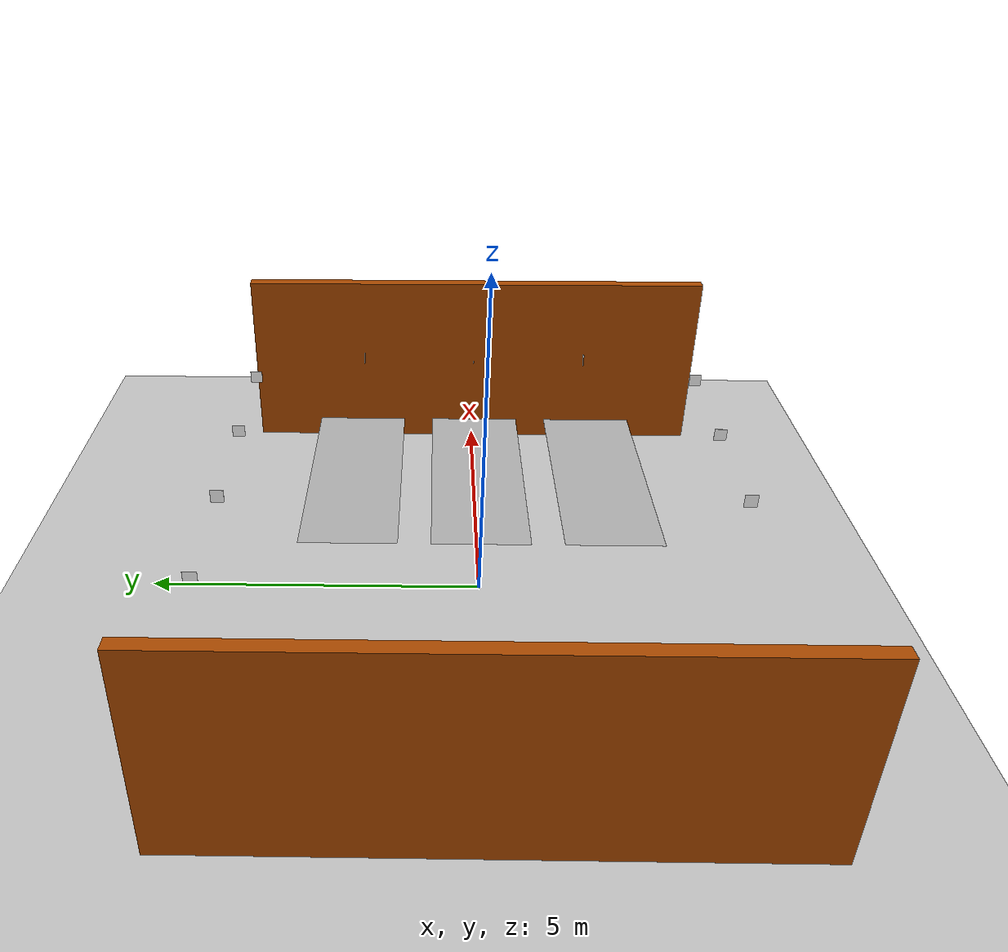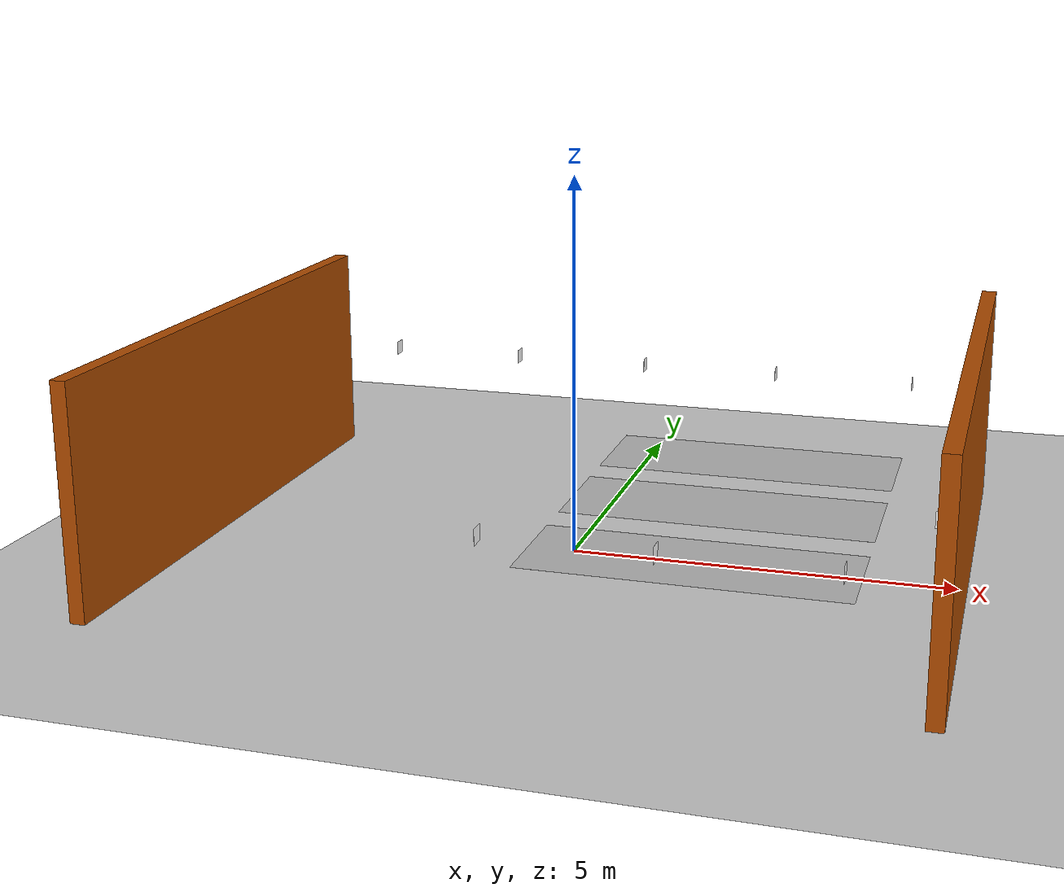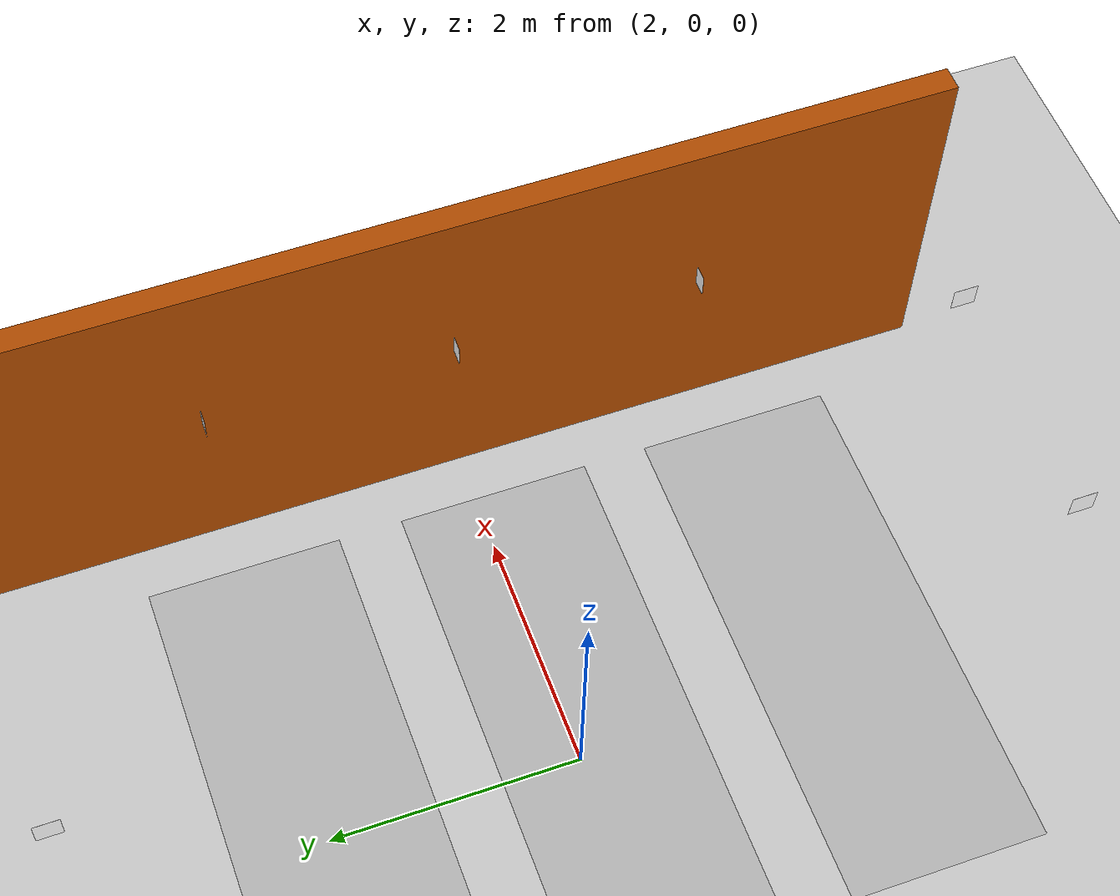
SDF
<sdf version="1.5">
 <world name="map">
  <include><uri>model://sun</uri></include>
  <include><uri>model://ground_plane</uri></include>
  <model name="aruco_0">
   <pose>-4 3.87 1.6 0 1.5708 -1.5708</pose>
   <include><uri>model://aruco_0</uri></include>
  </model>
  <model name="aruco_1">
   <pose>-2 3.87 1.6 0 1.5708 -1.5708</pose>
   <include><uri>model://aruco_1</uri></include>
  </model>
  <model name="aruco_2">
   <pose>0 3.87 1.6 0 1.5708 -1.5708</pose>
   <include><uri>model://aruco_2</uri></include>
  </model>
  <model name="aruco_3">
   <pose>2 3.87 1.6 0 1.5708 -1.5708</pose>
   <include><uri>model://aruco_3</uri></include>
  </model>
  <model name="aruco_4">
   <pose>4 3.87 1.6 0 1.5708 -1.5708</pose>
   <include><uri>model://aruco_4</uri></include>
  </model>
  <model name="aruco_5">
   <pose>4.87 2 1.6 0 1.5708 3.14159</pose>
   <include><uri>model://aruco_5</uri></include>
  </model>
  <model name="aruco_6">
   <pose>4.87 0 1.6 0 1.5708 3.14159</pose>
   <include><uri>model://aruco_6</uri></include>
  </model>
  <model name="aruco_7">
   <pose>4.87 -2 1.6 0 1.5708 3.14159</pose>
   <include><uri>model://aruco_7</uri></include>
  </model>
  <model name="aruco_8">
   <pose>4 -3.87 1.6 0 1.5708 1.5708</pose>
   <include><uri>model://aruco_8</uri></include>
  </model>
  <model name="aruco_9">
   <pose>2 -3.87 1.6 0 1.5708 1.5708</pose>
   <include><uri>model://aruco_9</uri></include>
  </model>
  <model name="aruco_10">
   <pose>0 -3.87 1.6 0 1.5708 1.5708</pose>
   <include><uri>model://aruco_10</uri></include>
  </model>
  <model name="top_wall">
   <pose>5 0 1.5 0 0 1.5708</pose>
   <static>true</static>
   <link name="link">
    <inertial>
     <mass>1.0</mass>
     <inertia><ixx>1</ixx><ixy>0</ixy><ixz>0</ixz><iyy>1</iyy><iyz>0</iyz><izz>1</izz></inertia>
    </inertial>
    <collision name="collision"><geometry><box><size>8 0.2 3</size></box></geometry></collision>
    <visual name="visual">
     <geometry><box><size>8 0.2 3</size></box></geometry>
     <material>
      <ambient>1 0.5 0.2 1</ambient>
      <diffuse>0.7 0.3 0 1</diffuse>
      <specular>0.2 0.2 0.2 64</specular>
      <emissive>0.5 0.05 0.2 1</emissive>
     </material>
    </visual>
   </link>
  </model>
  <model name="bottom_wall">
   <pose>-5 0 1.5 0 0 1.5708</pose>
   <static>true</static>
   <link name="link">
    <inertial>
     <mass>1.0</mass>
     <inertia><ixx>1</ixx><ixy>0</ixy><ixz>0</ixz><iyy>1</iyy><iyz>0</iyz><izz>1</izz></inertia>
    </inertial>
    <collision name="collision"><geometry><box><size>8 0.2 3</size></box></geometry></collision>
    <visual name="visual">
     <geometry><box><size>8 0.2 3</size></box></geometry>
     <material>
      <ambient>1 0.5 0.2 1</ambient>
      <diffuse>0.7 0.3 0 1</diffuse>
      <specular>0.2 0.2 0.2 64</specular>
      <emissive>0.5 0.05 0.2 1</emissive>
     </material>
    </visual>
   </link>
  </model>
  <model name="planter_1"><pose>2 2 0.8 0 0 0</pose><include><uri>model://gm_planter</uri></include></model>
  <model name="planter_2"><pose>2 0 0.8 0 0 0</pose><include><uri>model://gm_planter</uri></include></model>
  <model name="planter_3"><pose>2 -2 0.8 0 0 0</pose><include><uri>model://gm_planter</uri></include></model>
  <scene><ambient>0.0 0.0 0.0 1.0</ambient><shadows>0</shadows></scene>
  <physics name="default_physics" default="0" type="ode">
   <gravity>0 0 -9.8066</gravity>
   <ode>
    <solver>
     <type>quick</type>
     <iters>10</iters>
     <sor>1.3</sor>
     <use_dynamic_moi_rescaling>0</use_dynamic_moi_rescaling>
    </solver>
    <constraints>
     <cfm>0</cfm>
     <erp>0.2</erp>
     <contact_max_correcting_vel>100</contact_max_correcting_vel>
     <contact_surface_layer>0.001</contact_surface_layer>
    </constraints>
   </ode>
   <max_step_size>0.004</max_step_size>
   <real_time_factor>1</real_time_factor>
   <real_time_update_rate>250</real_time_update_rate>
   <magnetic_field>6.0e-6 2.3e-5 -4.2e-5</magnetic_field>
  </physics>
 </world>
</sdf>

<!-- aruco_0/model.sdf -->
<sdf version="1.9">
  <model name="aruco_0">
    <static>true</static>

    <link name="link"><inertial><mass>1.0</mass><inertia><ixx>0.1</ixx><ixy>0</ixy><ixz>0</ixz><iyy>0.1</iyy><iyz>0</iyz><izz>0.1</izz></inertia></inertial>

      <visual name="visual">
        <pose>0 0 0 0 1.5708 0</pose>

        <geometry>
          <box>
            <size>0.20 0.001 0.20</size>
          </box>
        </geometry>

        <material>
          <ambient>1 1 1 1</ambient>
          <diffuse>1 1 1 1</diffuse>

          <pbr>
            <metal>
              <albedo_map>model://aruco_0/materials/textures/aruco_0.png</albedo_map>
            </metal>
          </pbr>
        </material>
      </visual>

    </link>
  </model>
</sdf>

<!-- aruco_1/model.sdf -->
<sdf version="1.9">
  <model name="aruco_1">
    <static>true</static>
    <link name="link"><inertial><mass>1.0</mass><inertia><ixx>0.1</ixx><ixy>0</ixy><ixz>0</ixz><iyy>0.1</iyy><iyz>0</iyz><izz>0.1</izz></inertia></inertial>
      <visual name="visual">
        <pose>0 0 0 0 1.5708 0</pose>
        <geometry>
          <box>
            <size>0.20 0.001 0.20</size>
          </box>
        </geometry>
        <material>
          <ambient>1 1 1 1</ambient>
          <diffuse>1 1 1 1</diffuse>
          <pbr>
            <metal>
              <albedo_map>model://aruco_1/materials/textures/aruco_1.png</albedo_map>
            </metal>
          </pbr>
        </material>
      </visual>
    </link>
  </model>
</sdf>

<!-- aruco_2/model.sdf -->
<sdf version="1.9">
  <model name="aruco_2">
    <static>true</static>
    <link name="link"><inertial><mass>1.0</mass><inertia><ixx>0.1</ixx><ixy>0</ixy><ixz>0</ixz><iyy>0.1</iyy><iyz>0</iyz><izz>0.1</izz></inertia></inertial>
      <visual name="visual">
        <pose>0 0 0 0 1.5708 0</pose>
        <geometry>
          <box>
            <size>0.20 0.001 0.20</size>
          </box>
        </geometry>
        <material>
          <ambient>1 1 1 1</ambient>
          <diffuse>1 1 1 1</diffuse>
          <pbr>
            <metal>
              <albedo_map>model://aruco_2/materials/textures/aruco_2.png</albedo_map>
            </metal>
          </pbr>
        </material>
      </visual>
    </link>
  </model>
</sdf>

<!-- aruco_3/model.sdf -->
<sdf version="1.9">
  <model name="aruco_3">
    <static>true</static>
    <link name="link"><inertial><mass>1.0</mass><inertia><ixx>0.1</ixx><ixy>0</ixy><ixz>0</ixz><iyy>0.1</iyy><iyz>0</iyz><izz>0.1</izz></inertia></inertial>
      <visual name="visual">
        <pose>0 0 0 0 1.5708 0</pose>
        <geometry>
          <box>
            <size>0.20 0.001 0.20</size>
          </box>
        </geometry>
        <material>
          <ambient>1 1 1 1</ambient>
          <diffuse>1 1 1 1</diffuse>
          <pbr>
            <metal>
              <albedo_map>model://aruco_3/materials/textures/aruco_3.png</albedo_map>
            </metal>
          </pbr>
        </material>
      </visual>
    </link>
  </model>
</sdf>

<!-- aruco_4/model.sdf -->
<sdf version="1.9">
  <model name="aruco_4">
    <static>true</static>
    <link name="link"><inertial><mass>1.0</mass><inertia><ixx>0.1</ixx><ixy>0</ixy><ixz>0</ixz><iyy>0.1</iyy><iyz>0</iyz><izz>0.1</izz></inertia></inertial>
      <visual name="visual">
        <pose>0 0 0 0 1.5708 0</pose>
        <geometry>
          <box>
            <size>0.20 0.001 0.20</size>
          </box>
        </geometry>
        <material>
          <ambient>1 1 1 1</ambient>
          <diffuse>1 1 1 1</diffuse>
          <pbr>
            <metal>
              <albedo_map>model://aruco_4/materials/textures/aruco_4.png</albedo_map>
            </metal>
          </pbr>
        </material>
      </visual>
    </link>
  </model>
</sdf>

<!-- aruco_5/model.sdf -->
<sdf version="1.9">
  <model name="aruco_5">
    <static>true</static>
    <link name="link"><inertial><mass>1.0</mass><inertia><ixx>0.1</ixx><ixy>0</ixy><ixz>0</ixz><iyy>0.1</iyy><iyz>0</iyz><izz>0.1</izz></inertia></inertial>
      <visual name="visual">
        <pose>0 0 0 0 1.5708 0</pose>
        <geometry>
          <box>
            <size>0.20 0.001 0.20</size>
          </box>
        </geometry>
        <material>
          <ambient>1 1 1 1</ambient>
          <diffuse>1 1 1 1</diffuse>
          <pbr>
            <metal>
              <albedo_map>model://aruco_5/materials/textures/aruco_5.png</albedo_map>
            </metal>
          </pbr>
        </material>
      </visual>
    </link>
  </model>
</sdf>

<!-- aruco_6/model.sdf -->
<sdf version="1.9">
  <model name="aruco_6">
    <static>true</static>
    <link name="link"><inertial><mass>1.0</mass><inertia><ixx>0.1</ixx><ixy>0</ixy><ixz>0</ixz><iyy>0.1</iyy><iyz>0</iyz><izz>0.1</izz></inertia></inertial>
      <visual name="visual">
        <pose>0 0 0 0 1.5708 0</pose>
        <geometry>
          <box>
            <size>0.20 0.001 0.20</size>
          </box>
        </geometry>
        <material>
          <ambient>1 1 1 1</ambient>
          <diffuse>1 1 1 1</diffuse>
          <pbr>
            <metal>
              <albedo_map>model://aruco_6/materials/textures/aruco_6.png</albedo_map>
            </metal>
          </pbr>
        </material>
      </visual>
    </link>
  </model>
</sdf>

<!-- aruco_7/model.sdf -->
<sdf version="1.9">
  <model name="aruco_7">
    <static>true</static>
    <link name="link"><inertial><mass>1.0</mass><inertia><ixx>0.1</ixx><ixy>0</ixy><ixz>0</ixz><iyy>0.1</iyy><iyz>0</iyz><izz>0.1</izz></inertia></inertial>
      <visual name="visual">
        <pose>0 0 0 0 1.5708 0</pose>
        <geometry>
          <box>
            <size>0.20 0.001 0.20</size>
          </box>
        </geometry>
        <material>
          <ambient>1 1 1 1</ambient>
          <diffuse>1 1 1 1</diffuse>
          <pbr>
            <metal>
              <albedo_map>model://aruco_7/materials/textures/aruco_7.png</albedo_map>
            </metal>
          </pbr>
        </material>
      </visual>
    </link>
  </model>
</sdf>

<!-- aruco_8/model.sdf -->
<sdf version="1.9">
  <model name="aruco_8">
    <static>true</static>
    <link name="link"><inertial><mass>1.0</mass><inertia><ixx>0.1</ixx><ixy>0</ixy><ixz>0</ixz><iyy>0.1</iyy><iyz>0</iyz><izz>0.1</izz></inertia></inertial>
      <visual name="visual">
        <pose>0 0 0 0 1.5708 0</pose>
        <geometry>
          <box>
            <size>0.20 0.001 0.20</size>
          </box>
        </geometry>
        <material>
          <ambient>1 1 1 1</ambient>
          <diffuse>1 1 1 1</diffuse>
          <pbr>
            <metal>
              <albedo_map>model://aruco_8/materials/textures/aruco_8.png</albedo_map>
            </metal>
          </pbr>
        </material>
      </visual>
    </link>
  </model>
</sdf>

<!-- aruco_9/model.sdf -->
<sdf version="1.9">
  <model name="aruco_9">
    <static>true</static>
    <link name="link"><inertial><mass>1.0</mass><inertia><ixx>0.1</ixx><ixy>0</ixy><ixz>0</ixz><iyy>0.1</iyy><iyz>0</iyz><izz>0.1</izz></inertia></inertial>
      <visual name="visual">
        <pose>0 0 0 0 1.5708 0</pose>
        <geometry>
          <box>
            <size>0.20 0.001 0.20</size>
          </box>
        </geometry>
        <material>
          <ambient>1 1 1 1</ambient>
          <diffuse>1 1 1 1</diffuse>
          <pbr>
            <metal>
              <albedo_map>model://aruco_9/materials/textures/aruco_9.png</albedo_map>
            </metal>
          </pbr>
        </material>
      </visual>
    </link>
  </model>
</sdf>

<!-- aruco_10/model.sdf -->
<sdf version="1.9">
  <model name="aruco_10">
    <static>true</static>
    <link name="link"><inertial><mass>1.0</mass><inertia><ixx>0.1</ixx><ixy>0</ixy><ixz>0</ixz><iyy>0.1</iyy><iyz>0</iyz><izz>0.1</izz></inertia></inertial>
      <visual name="visual">
        <pose>0 0 0 0 1.5708 0</pose>
        <geometry>
          <box>
            <size>0.20 0.001 0.20</size>
          </box>
        </geometry>
        <material>
          <ambient>1 1 1 1</ambient>
          <diffuse>1 1 1 1</diffuse>
          <pbr>
            <metal>
              <albedo_map>model://aruco_10/materials/textures/aruco_10.png</albedo_map>
            </metal>
          </pbr>
        </material>
      </visual>
    </link>
  </model>
</sdf>

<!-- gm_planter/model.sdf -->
<sdf version='1.5'>
  <model name='gm_planter'>

    <link name='planter'>
      <pose frame=''>0 0 0 0 0 0</pose>
      <visual name='visual'>
        <geometry>
          <box>
            <size> 4 1.5 1e-5</size>
          </box>
        </geometry>
        <material>
          <script>
            <uri>model://gm_planter/materials/scripts</uri>
            <uri>model://gm_planter/materials/textures</uri>
            <name>gm_planter/planter</name>
          </script>
          <shader type='vertex'>
            <normal_map>__default__</normal_map>
          </shader>
        </material>
        <pose frame=''>0 0 0 0 -0 0</pose>
        <cast_shadows>1</cast_shadows>
        <transparency>0</transparency>
      </visual>
      <collision name='collision'>
        <laser_retro>0</laser_retro>
        <max_contacts>10</max_contacts>
        <pose frame=''>0 0 0 0 -0 0</pose>
        <geometry>
          <box>
            <size> 4 1.5 1e-05</size>
          </box>
        </geometry>
      </collision>
    </link>

    <static>1</static>
    <allow_auto_disable>1</allow_auto_disable>

  </model>
</sdf>
